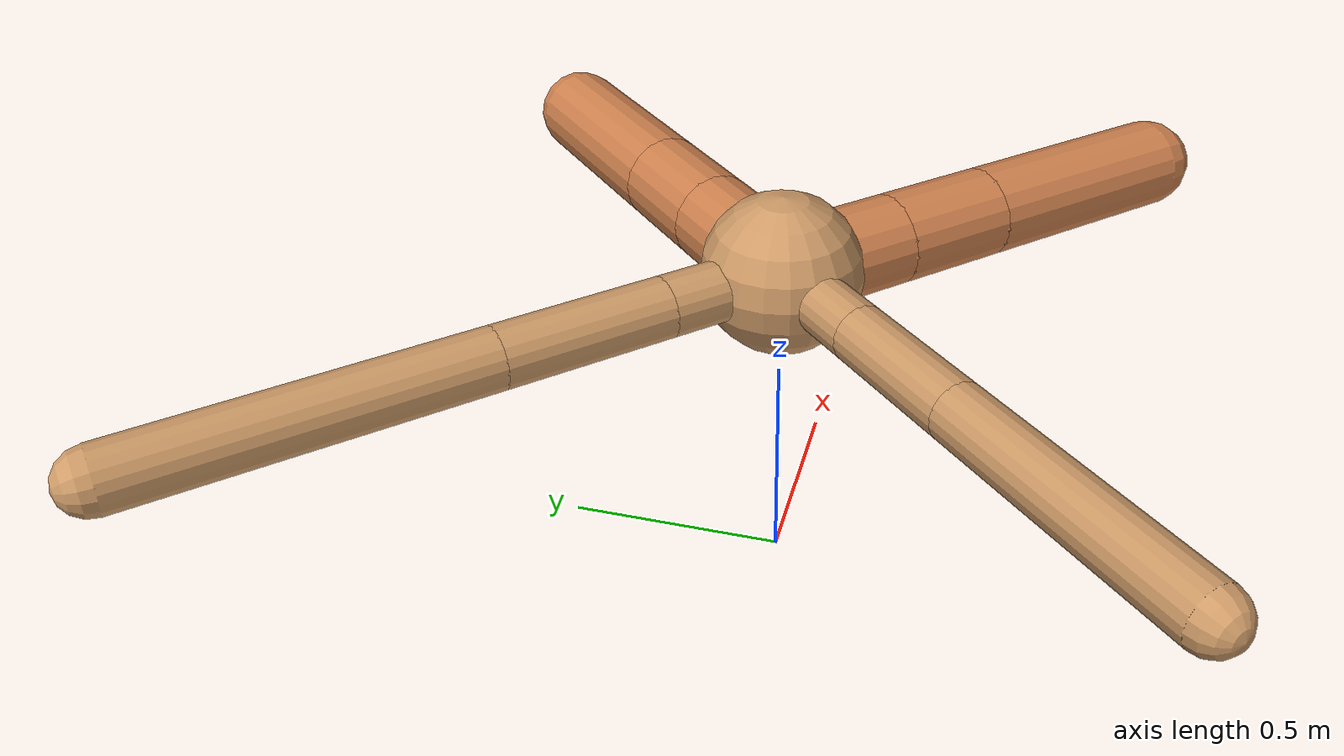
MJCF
<?xml version="1.0" ?>
<mujoco model="ant">

	<compiler angle="degree" coordinate="local" inertiafromgeom="true"/>

	<option integrator="RK4" timestep="0.01"/>

	<custom>

		<numeric data="0.0 0.0 0.55 1.0 0.0 0.0 0.0 0.0 1.0 0.0 -1.0 0.0 -1.0 0.0 1.0" name="init_qpos"/>

	</custom>

	<default>

		<joint armature="1" damping="1" limited="true"/>

		<geom conaffinity="0" condim="3" density="5.0" friction="1.5 0.1 0.1" margin="0.01" rgba="0.8 0.6 0.4 1"/>

	</default>

	<worldbody>

		<body name="torso" pos="0 0 0.75">

			<geom name="torso_geom" pos="0 0 0" size="0.17601215646078855" type="sphere"/>

			<!--joint armature="0" damping="0" limited="false" margin="0.01" name="root" pos="0 0 0" type="free"/-->

			<body name="front_left_leg" pos="0 0 0">

				<geom fromto="0 0 0 0.2 0.2 0" name="aux_1_geom" size="0.10350338601755589" type="capsule" rgba=".8 .5 .3 1"/>

				<body name="aux_1" pos="0.2 0.2 0">

					<joint axis="0 0 1" name="hip_1" pos="0.0 0.0 0.0" range="-40 40" type="hinge"/>

					<geom fromto="0 0 0 0.16552716314267868 0.16552716314267868 0" name="left_leg_geom" size="0.10350338601755589" type="capsule" rgba=".8 .5 .3 1"/>

					<body pos="0.16552716314267868 0.16552716314267868 0" name="front_left_foot">

						<joint axis="-1 1 0" name="ankle_1" pos="0.0 0.0 0.0" range="30 100" type="hinge"/>

						<geom fromto="0 0 0 0.33105432628535736 0.33105432628535736 0" name="left_ankle_geom" size="0.10350338601755589" type="capsule" rgba=".8 .5 .3 1"/>

					</body>

				</body>

			</body>

			<body name="front_right_leg" pos="0 0 0">

				<geom fromto="0 0 0 -0.2 0.2 0" name="aux_2_geom" size="0.0659811660088727" type="capsule"/>

				<body name="aux_2" pos="-0.2 0.2 0">

					<joint axis="0 0 1" name="hip_2" pos="0.0 0.0 0.0" range="-40 40" type="hinge"/>

					<geom fromto="0 0 0 -0.25804591308090025 0.25804591308090025 0" name="right_leg_geom" size="0.0659811660088727" type="capsule"/>

					<body pos="-0.25804591308090025 0.25804591308090025 0" name="front_right_foot">

						<joint axis="1 1 0" name="ankle_2" pos="0.0 0.0 0.0" range="-100 -30" type="hinge"/>

						<geom fromto="0 0 0 -0.5160918261618005 0.5160918261618005 0" name="right_ankle_geom" size="0.0659811660088727" type="capsule"/>

					</body>

				</body>

			</body>

			<body name="left_back_leg" pos="0 0 0">

				<geom fromto="0 0 0 -0.2 -0.2 0" name="aux_3_geom" size="0.06306237785865437" type="capsule"/>

				<body name="aux_3" pos="-0.2 -0.2 0">

					<joint axis="0 0 1" name="hip_3" pos="0.0 0.0 0.0" range="-40 40" type="hinge"/>

					<geom fromto="0 0 0 -0.2129147100101934 -0.2129147100101934 0" name="back_leg_geom" size="0.06306237785865437" type="capsule"/>

					<body pos="-0.2129147100101934 -0.2129147100101934 0" name="left_back_foot">

						<joint axis="-1 1 0" name="ankle_3" pos="0.0 0.0 0.0" range="-100 -30" type="hinge"/>

						<geom fromto="0 0 0 -0.4258294200203868 -0.4258294200203868 0" name="third_ankle_geom" size="0.06306237785865437" type="capsule"/>

					</body>

				</body>

			</body>

			<body name="right_back_leg" pos="0 0 0">

				<geom fromto="0 0 0 0.2 -0.2 0" name="aux_4_geom" size="0.10261012338436055" type="capsule" rgba=".8 .5 .3 1"/>

				<body name="aux_4" pos="0.2 -0.2 0">

					<joint axis="0 0 1" name="hip_4" pos="0.0 0.0 0.0" range="-40 40" type="hinge"/>

					<geom fromto="0 0 0 0.1812194140384516 -0.1812194140384516 0" name="rightback_leg_geom" size="0.10261012338436055" type="capsule" rgba=".8 .5 .3 1"/>

					<body pos="0.1812194140384516 -0.1812194140384516 0" name="right_back_foot">

						<joint axis="1 1 0" name="ankle_4" pos="0.0 0.0 0.0" range="30 100" type="hinge"/>

						<geom fromto="0 0 0 0.3624388280769032 -0.3624388280769032 0" name="fourth_ankle_geom" size="0.10261012338436055" type="capsule" rgba=".8 .5 .3 1"/>

					</body>

				</body>

			</body>

		</body>

	</worldbody>

	<actuator>

		<motor ctrllimited="true" ctrlrange="-1.0 1.0" joint="hip_4" gear="150"/>

		<motor ctrllimited="true" ctrlrange="-1.0 1.0" joint="ankle_4" gear="150"/>

		<motor ctrllimited="true" ctrlrange="-1.0 1.0" joint="hip_1" gear="150"/>

		<motor ctrllimited="true" ctrlrange="-1.0 1.0" joint="ankle_1" gear="150"/>

		<motor ctrllimited="true" ctrlrange="-1.0 1.0" joint="hip_2" gear="150"/>

		<motor ctrllimited="true" ctrlrange="-1.0 1.0" joint="ankle_2" gear="150"/>

		<motor ctrllimited="true" ctrlrange="-1.0 1.0" joint="hip_3" gear="150"/>

		<motor ctrllimited="true" ctrlrange="-1.0 1.0" joint="ankle_3" gear="150"/>

	</actuator>

</mujoco>
